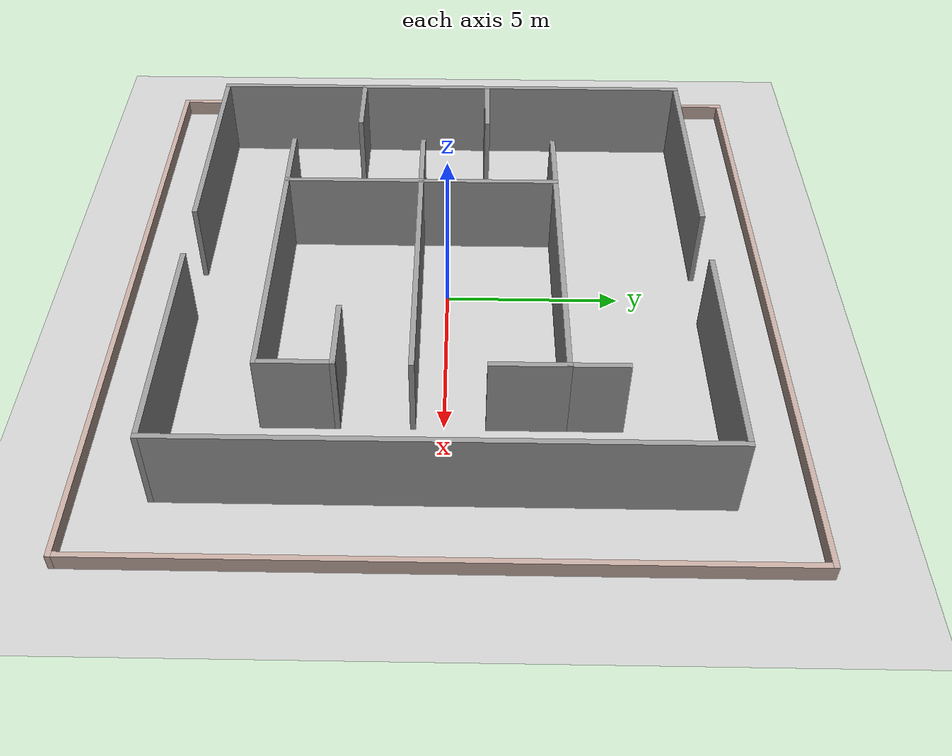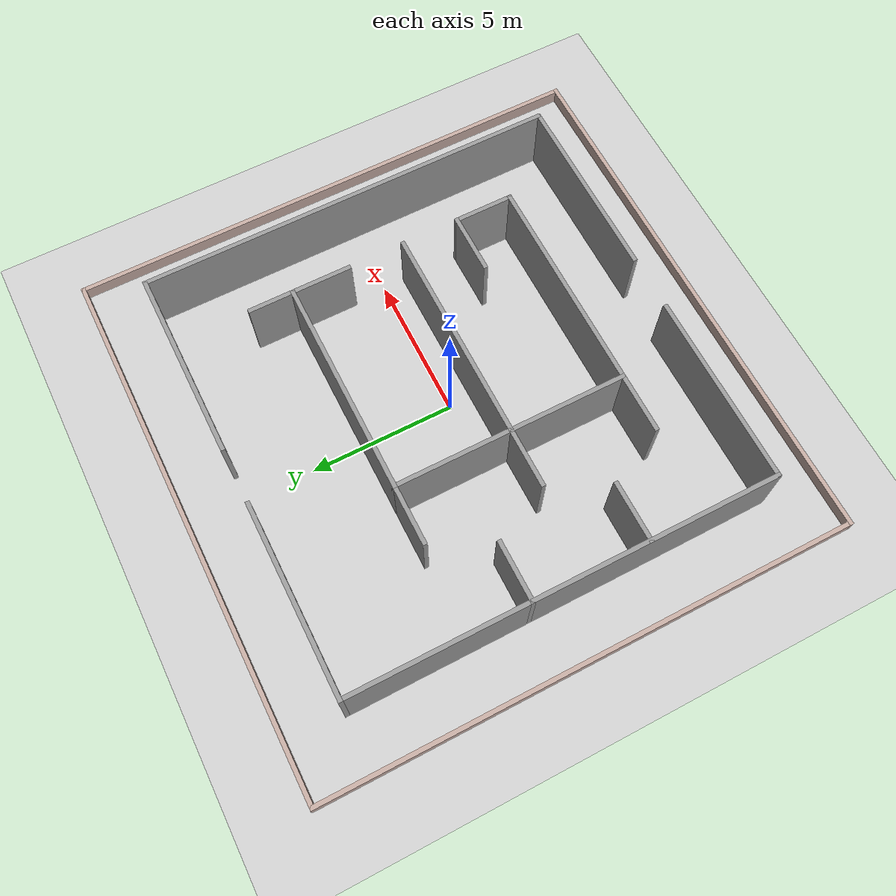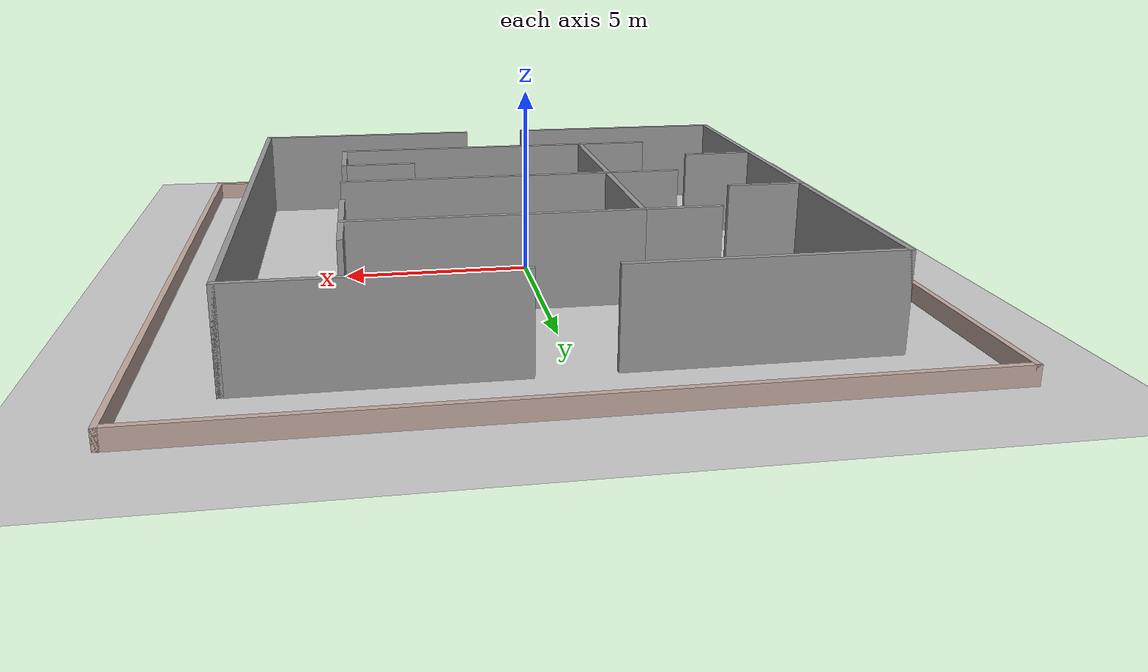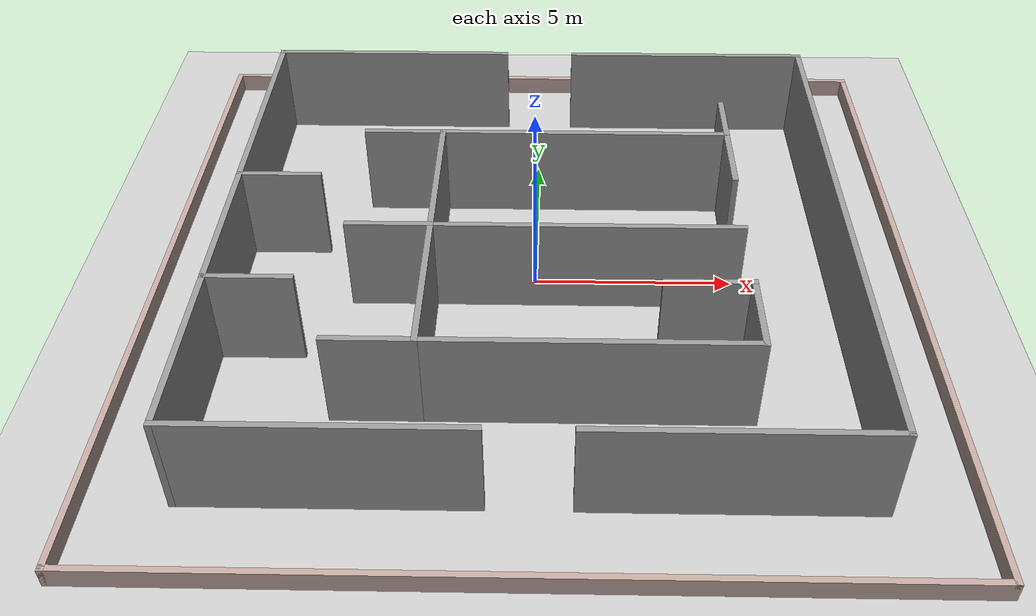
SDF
<sdf version="1.6">
 <world name="default">
  <plugin name="gazebo_occupancy_map" filename="libgazebo_2Dmap_plugin.so">
   <map_resolution>0.05</map_resolution>
   <map_height>0.0</map_height>
   <map_size_x>25</map_size_x>
   <map_size_y>25</map_size_y>
   <init_robot_x>0</init_robot_x>
   <init_robot_y>0</init_robot_y>
  </plugin>
  <light name="sun" type="directional">
   <pose>0 0 10 0 -0 0</pose>
   <diffuse>0.8 0.8 0.8 1</diffuse>
   <specular>0.2 0.2 0.2 1</specular>
   <attenuation>
    <range>1000</range>
    <constant>0.9</constant>
    <linear>0.01</linear>
    <quadratic>0.001</quadratic>
   </attenuation>
   <direction>-0.5 0.1 -0.9</direction>
  </light>
  <model name="ground_plane">
   <static>1</static>
   <link name="link">
    <collision name="collision">
     <geometry><plane><normal>0 0 1</normal><size>100 100</size></plane></geometry>
     <surface>
      <contact><collide_bitmask>65535</collide_bitmask></contact>
      <friction><ode><mu>100</mu><mu2>50</mu2></ode></friction>
     </surface>
    </collision>
    <visual name="visual">
     <cast_shadows>0</cast_shadows>
     <geometry><plane><normal>0 0 1</normal><size>100 100</size></plane></geometry>
     <material>
      <script><uri>file://media/materials/scripts/gazebo.material</uri><name>Gazebo/Grey</name></script>
     </material>
    </visual>
   </link>
  </model>
  <gravity>0 0 -9.8</gravity>
  <magnetic_field>6e-06 2.3e-05 -4.2e-05</magnetic_field>
  <atmosphere type="adiabatic"/>
  <physics name="default_physics" default="0" type="ode">
   <max_step_size>0.001</max_step_size>
   <real_time_factor>1</real_time_factor>
   <real_time_update_rate>1000</real_time_update_rate>
  </physics>
  <scene><ambient>0.4 0.4 0.4 1</ambient><background>0.7 0.7 0.7 1</background><shadows>1</shadows></scene>
  <audio><device>default</device></audio>
  <spherical_coordinates>
   <surface_model>EARTH_WGS84</surface_model>
   <latitude_deg>0</latitude_deg>
   <longitude_deg>0</longitude_deg>
   <elevation>0</elevation>
   <heading_deg>0</heading_deg>
  </spherical_coordinates>
  <model name="indoor_env_01">
   <link name="Wall_0">
    <collision name="Wall_0_Collision">
     <geometry><box><size>7.65 0.15 2.5</size></box></geometry>
     <pose>0 0 1.25 0 -0 0</pose>
    </collision>
    <visual name="Wall_0_Visual">
     <pose>0 0 1.25 0 -0 0</pose>
     <geometry><box><size>7.65 0.15 2.5</size></box></geometry>
     <material>
      <script><uri>file://media/materials/scripts/gazebo.material</uri><name>Gazebo/Grey</name></script>
      <ambient>1 1 1 1</ambient>
     </material>
     <meta><layer>0</layer></meta>
    </visual>
    <pose>1.25 -0.825 0 0 -0 0</pose>
   </link>
   <link name="Wall_10">
    <collision name="Wall_10_Collision">
     <geometry><box><size>7.65 0.15 2.5</size></box></geometry>
     <pose>0 0 1.25 0 -0 0</pose>
    </collision>
    <visual name="Wall_10_Visual">
     <pose>0 0 1.25 0 -0 0</pose>
     <geometry><box><size>7.65 0.15 2.5</size></box></geometry>
     <material>
      <script><uri>file://media/materials/scripts/gazebo.material</uri><name>Gazebo/Grey</name></script>
      <ambient>1 1 1 1</ambient>
     </material>
     <meta><layer>0</layer></meta>
    </visual>
    <pose>1.25 3.175 0 0 -0 0</pose>
   </link>
   <link name="Wall_11">
    <collision name="Wall_11_Collision">
     <geometry><box><size>2.15 0.15 2.5</size></box></geometry>
     <pose>0 0 1.25 0 -0 0</pose>
    </collision>
    <visual name="Wall_11_Visual">
     <pose>0 0 1.25 0 -0 0</pose>
     <geometry><box><size>2.15 0.15 2.5</size></box></geometry>
     <material>
      <script><uri>file://media/materials/scripts/gazebo.material</uri><name>Gazebo/Grey</name></script>
      <ambient>1 1 1 1</ambient>
     </material>
     <meta><layer>0</layer></meta>
    </visual>
    <pose>5 2.175 0 0 -0 -1.5708</pose>
   </link>
   <link name="Wall_14">
    <collision name="Wall_14_Collision">
     <geometry><box><size>14.8 0.15 2.5</size></box></geometry>
     <pose>0 0 1.25 0 -0 0</pose>
    </collision>
    <visual name="Wall_14_Visual">
     <pose>0 0 1.25 0 -0 0</pose>
     <geometry><box><size>14.8 0.15 2.5</size></box></geometry>
     <material>
      <script><uri>file://media/materials/scripts/gazebo.material</uri><name>Gazebo/Grey</name></script>
      <ambient>1 1 1 1</ambient>
     </material>
     <meta><layer>0</layer></meta>
    </visual>
    <pose>7.5 0 0 0 -0 -1.5708</pose>
   </link>
   <link name="Wall_16">
    <collision name="Wall_16_Collision">
     <geometry><box><size>1.65 0.15 2.5</size></box></geometry>
     <pose>0 0 1.25 0 -0 0</pose>
    </collision>
    <visual name="Wall_16_Visual">
     <pose>0 0 1.25 0 -0 0</pose>
     <geometry><box><size>1.65 0.15 2.5</size></box></geometry>
     <material>
      <script><uri>file://media/materials/scripts/gazebo.material</uri><name>Gazebo/Grey</name></script>
      <ambient>1 1 1 1</ambient>
     </material>
     <meta><layer>0</layer></meta>
    </visual>
    <pose>5 3.925 0 0 -0 1.5708</pose>
   </link>
   <link name="Wall_18">
    <collision name="Wall_18_Collision">
     <geometry><box><size>6.65 0.15 2.5</size></box></geometry>
     <pose>0 0 1.25 0 -0 0</pose>
    </collision>
    <visual name="Wall_18_Visual">
     <pose>0 0 1.25 0 -0 0</pose>
     <geometry><box><size>6.65 0.15 2.5</size></box></geometry>
     <material>
      <script><uri>file://media/materials/scripts/gazebo.material</uri><name>Gazebo/Grey</name></script>
      <ambient>1 1 1 1</ambient>
     </material>
     <meta><layer>0</layer></meta>
    </visual>
    <pose>4.25 7.325 0 0 -0 0</pose>
   </link>
   <link name="Wall_2">
    <collision name="Wall_2_Collision">
     <geometry><box><size>4.15 0.15 2.5</size></box></geometry>
     <pose>0 0 1.25 0 -0 0</pose>
    </collision>
    <visual name="Wall_2_Visual">
     <pose>0 0 1.25 0 -0 0</pose>
     <geometry><box><size>4.15 0.15 2.5</size></box></geometry>
     <material>
      <script><uri>file://media/materials/scripts/gazebo.material</uri><name>Gazebo/Grey</name></script>
      <ambient>1 1 1 1</ambient>
     </material>
     <meta><layer>0</layer></meta>
    </visual>
    <pose>-2.5 -2.825 0 0 -0 -1.5708</pose>
   </link>
   <link name="Wall_29">
    <collision name="Wall_29_Collision">
     <geometry><box><size>6.65 0.15 2.5</size></box></geometry>
     <pose>0 0 1.25 0 -0 0</pose>
    </collision>
    <visual name="Wall_29_Visual">
     <pose>0 0 1.25 0 -0 0</pose>
     <geometry><box><size>6.65 0.15 2.5</size></box></geometry>
     <material>
      <script><uri>file://media/materials/scripts/gazebo.material</uri><name>Gazebo/Grey</name></script>
      <ambient>1 1 1 1</ambient>
     </material>
     <meta><layer>0</layer></meta>
    </visual>
    <pose>-4.25 -7.325 0 0 -0 3.14159</pose>
   </link>
   <link name="Wall_31">
    <collision name="Wall_31_Collision">
     <geometry><box><size>2.15 0.15 2.5</size></box></geometry>
     <pose>0 0 1.25 0 -0 0</pose>
    </collision>
    <visual name="Wall_31_Visual">
     <pose>0 0 1.25 0 -0 0</pose>
     <geometry><box><size>2.15 0.15 2.5</size></box></geometry>
     <material>
      <script><uri>file://media/materials/scripts/gazebo.material</uri><name>Gazebo/Grey</name></script>
      <ambient>1 1 1 1</ambient>
     </material>
     <meta><layer>0</layer></meta>
    </visual>
    <pose>-3.5 3.175 0 0 -0 3.14159</pose>
   </link>
   <link name="Wall_33">
    <collision name="Wall_33_Collision">
     <geometry><box><size>2.15 0.15 2.5</size></box></geometry>
     <pose>0 0 1.25 0 -0 0</pose>
    </collision>
    <visual name="Wall_33_Visual">
     <pose>0 0 1.25 0 -0 0</pose>
     <geometry><box><size>2.15 0.15 2.5</size></box></geometry>
     <material>
      <script><uri>file://media/materials/scripts/gazebo.material</uri><name>Gazebo/Grey</name></script>
      <ambient>1 1 1 1</ambient>
     </material>
     <meta><layer>0</layer></meta>
    </visual>
    <pose>-3.5 -4.825 0 0 -0 3.14159</pose>
   </link>
   <link name="Wall_35">
    <collision name="Wall_35_Collision">
     <geometry><box><size>2.15 0.15 2.5</size></box></geometry>
     <pose>0 0 1.25 0 -0 0</pose>
    </collision>
    <visual name="Wall_35_Visual">
     <pose>0 0 1.25 0 -0 0</pose>
     <geometry><box><size>2.15 0.15 2.5</size></box></geometry>
     <material>
      <script><uri>file://media/materials/scripts/gazebo.material</uri><name>Gazebo/Grey</name></script>
      <ambient>1 1 1 1</ambient>
     </material>
     <meta><layer>0</layer></meta>
    </visual>
    <pose>-3.5 -0.825 0 0 -0 3.14159</pose>
   </link>
   <link name="Wall_37">
    <collision name="Wall_37_Collision">
     <geometry><box><size>2.15 0.15 2.5</size></box></geometry>
     <pose>0 0 1.25 0 -0 0</pose>
    </collision>
    <visual name="Wall_37_Visual">
     <pose>0 0 1.25 0 -0 0</pose>
     <geometry><box><size>2.15 0.15 2.5</size></box></geometry>
     <material>
      <script><uri>file://media/materials/scripts/gazebo.material</uri><name>Gazebo/Grey</name></script>
      <ambient>1 1 1 1</ambient>
     </material>
     <meta><layer>0</layer></meta>
    </visual>
    <pose>-6.5 -2.825 0 0 -0 0</pose>
   </link>
   <link name="Wall_4">
    <collision name="Wall_4_Collision">
     <geometry><box><size>7.65 0.15 2.5</size></box></geometry>
     <pose>0 0 1.25 0 -0 0</pose>
    </collision>
    <visual name="Wall_4_Visual">
     <pose>0 0 1.25 0 -0 0</pose>
     <geometry><box><size>7.65 0.15 2.5</size></box></geometry>
     <material>
      <script><uri>file://media/materials/scripts/gazebo.material</uri><name>Gazebo/Grey</name></script>
      <ambient>1 1 1 1</ambient>
     </material>
     <meta><layer>0</layer></meta>
    </visual>
    <pose>1.25 -4.825 0 0 -0 0</pose>
   </link>
   <link name="Wall_43">
    <collision name="Wall_43_Collision">
     <geometry><box><size>2.15 0.15 2.5</size></box></geometry>
     <pose>0 0 1.25 0 -0 0</pose>
    </collision>
    <visual name="Wall_43_Visual">
     <pose>0 0 1.25 0 -0 0</pose>
     <geometry><box><size>2.15 0.15 2.5</size></box></geometry>
     <material>
      <script><uri>file://media/materials/scripts/gazebo.material</uri><name>Gazebo/Grey</name></script>
      <ambient>1 1 1 1</ambient>
     </material>
     <meta><layer>0</layer></meta>
    </visual>
    <pose>-6.5 1.175 0 0 -0 0</pose>
   </link>
   <link name="Wall_47">
    <collision name="Wall_47_Collision">
     <geometry><box><size>14.8 0.15 2.5</size></box></geometry>
     <pose>0 0 1.25 0 -0 0</pose>
    </collision>
    <visual name="Wall_47_Visual">
     <pose>0 0 1.25 0 -0 0</pose>
     <geometry><box><size>14.8 0.15 2.5</size></box></geometry>
     <material>
      <script><uri>file://media/materials/scripts/gazebo.material</uri><name>Gazebo/Grey</name></script>
      <ambient>1 1 1 1</ambient>
     </material>
     <meta><layer>0</layer></meta>
    </visual>
    <pose>-7.5 0 0 0 -0 -1.5708</pose>
   </link>
   <link name="Wall_5">
    <collision name="Wall_5_Collision">
     <geometry><box><size>2.15 0.15 2.5</size></box></geometry>
     <pose>0 0 1.25 0 -0 0</pose>
    </collision>
    <visual name="Wall_5_Visual">
     <pose>0 0 1.25 0 -0 0</pose>
     <geometry><box><size>2.15 0.15 2.5</size></box></geometry>
     <material>
      <script><uri>file://media/materials/scripts/gazebo.material</uri><name>Gazebo/Grey</name></script>
      <ambient>1 1 1 1</ambient>
     </material>
     <meta><layer>0</layer></meta>
    </visual>
    <pose>5 -3.825 0 0 -0 1.5708</pose>
   </link>
   <link name="Wall_51">
    <collision name="Wall_51_Collision">
     <geometry><box><size>6.65 0.15 2.5</size></box></geometry>
     <pose>0 0 1.25 0 -0 0</pose>
    </collision>
    <visual name="Wall_51_Visual">
     <pose>0 0 1.25 0 -0 0</pose>
     <geometry><box><size>6.65 0.15 2.5</size></box></geometry>
     <material>
      <script><uri>file://media/materials/scripts/gazebo.material</uri><name>Gazebo/Grey</name></script>
      <ambient>1 1 1 1</ambient>
     </material>
     <meta><layer>0</layer></meta>
    </visual>
    <pose>4.25 -7.325 0 0 -0 3.14159</pose>
   </link>
   <link name="Wall_55">
    <collision name="Wall_55_Collision">
     <geometry><box><size>6.65 0.15 2.5</size></box></geometry>
     <pose>0 0 1.25 0 -0 0</pose>
    </collision>
    <visual name="Wall_55_Visual">
     <pose>0 0 1.25 0 -0 0</pose>
     <geometry><box><size>6.65 0.15 2.5</size></box></geometry>
     <material>
      <script><uri>file://media/materials/scripts/gazebo.material</uri><name>Gazebo/Grey</name></script>
      <ambient>1 1 1 1</ambient>
     </material>
     <meta><layer>0</layer></meta>
    </visual>
    <pose>-4.25 7.325 0 0 -0 0</pose>
   </link>
   <link name="Wall_59">
    <collision name="Wall_59_Collision">
     <geometry><box><size>18.8 0.15 0.5</size></box></geometry>
     <pose>0 0 0.25 0 -0 0</pose>
    </collision>
    <visual name="Wall_59_Visual">
     <pose>0 0 0.25 0 -0 0</pose>
     <geometry><box><size>18.8 0.15 0.5</size></box></geometry>
     <material>
      <script><uri>file://media/materials/scripts/gazebo.material</uri><name>Gazebo/Grey</name></script>
      <ambient>0.760784 0.662745 0.627451 1</ambient>
     </material>
     <meta><layer>0</layer></meta>
    </visual>
    <pose>-9.5 0 0 0 -0 1.5708</pose>
   </link>
   <link name="Wall_63">
    <collision name="Wall_63_Collision">
     <geometry><box><size>19.15 0.15 0.5</size></box></geometry>
     <pose>0 0 0.25 0 -0 0</pose>
    </collision>
    <visual name="Wall_63_Visual">
     <pose>0 0 0.25 0 -0 0</pose>
     <geometry><box><size>19.15 0.15 0.5</size></box></geometry>
     <material>
      <script><uri>file://media/materials/scripts/gazebo.material</uri><name>Gazebo/Grey</name></script>
      <ambient>0.760784 0.662745 0.627451 1</ambient>
     </material>
     <meta><layer>0</layer></meta>
    </visual>
    <pose>0 -9.325 0 0 -0 0</pose>
   </link>
   <link name="Wall_69">
    <collision name="Wall_69_Collision">
     <geometry><box><size>19.15 0.15 0.5</size></box></geometry>
     <pose>0 0 0.25 0 -0 0</pose>
    </collision>
    <visual name="Wall_69_Visual">
     <pose>0 0 0.25 0 -0 0</pose>
     <geometry><box><size>19.15 0.15 0.5</size></box></geometry>
     <material>
      <script><uri>file://media/materials/scripts/gazebo.material</uri><name>Gazebo/Grey</name></script>
      <ambient>0.760784 0.662745 0.627451 1</ambient>
     </material>
     <meta><layer>0</layer></meta>
    </visual>
    <pose>0 9.325 0 0 -0 0</pose>
   </link>
   <link name="Wall_7">
    <collision name="Wall_7_Collision">
     <geometry><box><size>2.15 0.15 2.5</size></box></geometry>
     <pose>0 0 1.25 0 -0 0</pose>
    </collision>
    <visual name="Wall_7_Visual">
     <pose>0 0 1.25 0 -0 0</pose>
     <geometry><box><size>2.15 0.15 2.5</size></box></geometry>
     <material>
      <script><uri>file://media/materials/scripts/gazebo.material</uri><name>Gazebo/Grey</name></script>
      <ambient>1 1 1 1</ambient>
     </material>
     <meta><layer>0</layer></meta>
    </visual>
    <pose>4 -2.825 0 0 -0 3.14159</pose>
   </link>
   <link name="Wall_70">
    <collision name="Wall_70_Collision">
     <geometry><box><size>18.8 0.15 0.5</size></box></geometry>
     <pose>0 0 0.25 0 -0 0</pose>
    </collision>
    <visual name="Wall_70_Visual">
     <pose>0 0 0.25 0 -0 0</pose>
     <geometry><box><size>18.8 0.15 0.5</size></box></geometry>
     <material>
      <script><uri>file://media/materials/scripts/gazebo.material</uri><name>Gazebo/Grey</name></script>
      <ambient>0.760784 0.662745 0.627451 1</ambient>
     </material>
     <meta><layer>0</layer></meta>
    </visual>
    <pose>9.5 0 0 0 -0 -1.5708</pose>
   </link>
   <link name="Wall_9">
    <collision name="Wall_9_Collision">
     <geometry><box><size>4.15 0.15 2.5</size></box></geometry>
     <pose>0 0 1.25 0 -0 0</pose>
    </collision>
    <visual name="Wall_9_Visual">
     <pose>0 0 1.25 0 -0 0</pose>
     <geometry><box><size>4.15 0.15 2.5</size></box></geometry>
     <material>
      <script><uri>file://media/materials/scripts/gazebo.material</uri><name>Gazebo/Grey</name></script>
      <ambient>1 1 1 1</ambient>
     </material>
     <meta><layer>0</layer></meta>
    </visual>
    <pose>-2.5 1.175 0 0 -0 1.5708</pose>
   </link>
   <static>1</static>
  </model>
 </world>
</sdf>
